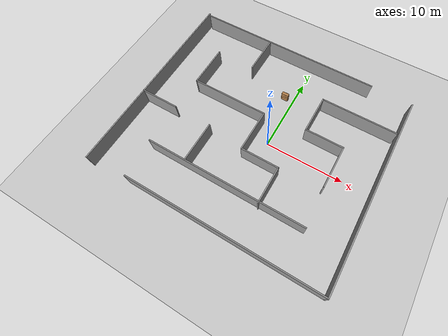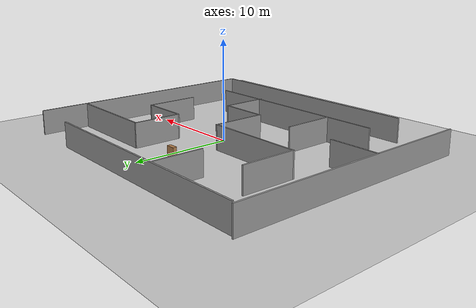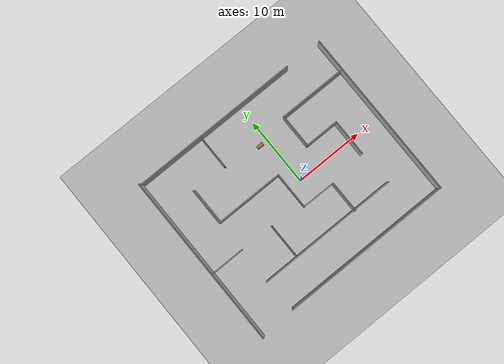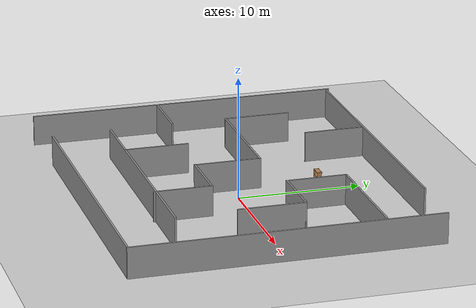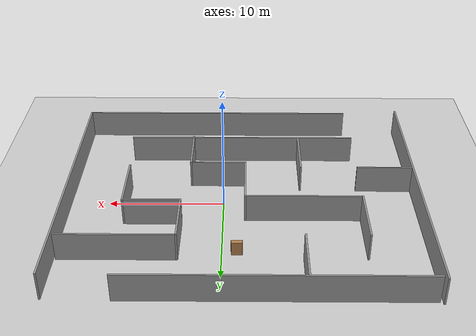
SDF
<sdf version="1.7">
 <world name="default">
  <light name="sun" type="directional">
   <pose>0 0 10 0 -0 0</pose>
   <diffuse>0.8 0.8 0.8 1</diffuse>
   <specular>0.2 0.2 0.2 1</specular>
   <attenuation>
    <range>1000</range>
    <constant>0.9</constant>
    <linear>0.01</linear>
    <quadratic>0.001</quadratic>
   </attenuation>
   <direction>-0.5 0.1 -0.9</direction>
   <spot><inner_angle>0</inner_angle><outer_angle>0</outer_angle><falloff>0</falloff></spot>
  </light>
  <model name="ground_plane">
   <static>1</static>
   <link name="link">
    <collision name="collision">
     <geometry><plane><normal>0 0 1</normal><size>100 100</size></plane></geometry>
     <surface><friction><ode><mu>100</mu><mu2>50</mu2></ode></friction></surface>
    </collision>
    <visual name="visual">
     <cast_shadows>0</cast_shadows>
     <geometry><plane><normal>0 0 1</normal><size>100 100</size></plane></geometry>
     <material>
      <script><uri>file://media/materials/scripts/gazebo.material</uri><name>Gazebo/Grey</name></script>
     </material>
    </visual>
   </link>
  </model>
  <gravity>0 0 -9.8</gravity>
  <magnetic_field>6e-06 2.3e-05 -4.2e-05</magnetic_field>
  <atmosphere type="adiabatic"/>
  <physics type="ode">
   <max_step_size>0.001</max_step_size>
   <real_time_factor>1</real_time_factor>
   <real_time_update_rate>1000</real_time_update_rate>
  </physics>
  <scene><ambient>0.4 0.4 0.4 1</ambient><background>0.7 0.7 0.7 1</background><shadows>1</shadows></scene>
  <audio><device>default</device></audio>
  <spherical_coordinates>
   <surface_model>EARTH_WGS84</surface_model>
   <latitude_deg>0</latitude_deg>
   <longitude_deg>0</longitude_deg>
   <elevation>0</elevation>
   <heading_deg>0</heading_deg>
  </spherical_coordinates>
  <model name="maze">
   <pose>-1.62336 0.048092 0 0 -0 0</pose>
   <link name="Wall_0">
    <collision name="Wall_0_Collision">
     <geometry><box><size>25.75 0.15 2.5</size></box></geometry>
     <pose>0 0 1.25 0 -0 0</pose>
    </collision>
    <visual name="Wall_0_Visual">
     <pose>0 0 1.25 0 -0 0</pose>
     <geometry><box><size>25.75 0.15 2.5</size></box></geometry>
     <material>
      <script><uri>file://media/materials/scripts/gazebo.material</uri><name>Gazebo/Grey</name></script>
      <ambient>1 1 1 1</ambient>
     </material>
     <meta><layer>0</layer></meta>
    </visual>
    <pose>-15.043 -0 0 0 -0 -1.5708</pose>
   </link>
   <link name="Wall_10">
    <collision name="Wall_10_Collision">
     <geometry><box><size>10 0.15 2.5</size></box></geometry>
     <pose>0 0 1.25 0 -0 0</pose>
    </collision>
    <visual name="Wall_10_Visual">
     <pose>0 0 1.25 0 -0 0</pose>
     <geometry><box><size>10 0.15 2.5</size></box></geometry>
     <material>
      <script><uri>file://media/materials/scripts/gazebo.material</uri><name>Gazebo/Grey</name></script>
      <ambient>1 1 1 1</ambient>
     </material>
     <meta><layer>0</layer></meta>
    </visual>
    <pose>-5.16502 2.28473 0 0 -0 0</pose>
   </link>
   <link name="Wall_11">
    <collision name="Wall_11_Collision">
     <geometry><box><size>5.5 0.15 2.5</size></box></geometry>
     <pose>0 0 1.25 0 -0 0</pose>
    </collision>
    <visual name="Wall_11_Visual">
     <pose>0 0 1.25 0 -0 0</pose>
     <geometry><box><size>5.5 0.15 2.5</size></box></geometry>
     <material>
      <script><uri>file://media/materials/scripts/gazebo.material</uri><name>Gazebo/Grey</name></script>
      <ambient>1 1 1 1</ambient>
     </material>
     <meta><layer>0</layer></meta>
    </visual>
    <pose>-0.240017 -0.390266 0 0 -0 -1.5708</pose>
   </link>
   <link name="Wall_12">
    <collision name="Wall_12_Collision">
     <geometry><box><size>5 0.15 2.5</size></box></geometry>
     <pose>0 0 1.25 0 -0 0</pose>
    </collision>
    <visual name="Wall_12_Visual">
     <pose>0 0 1.25 0 -0 0</pose>
     <geometry><box><size>5 0.15 2.5</size></box></geometry>
     <material>
      <script><uri>file://media/materials/scripts/gazebo.material</uri><name>Gazebo/Grey</name></script>
      <ambient>1 1 1 1</ambient>
     </material>
     <meta><layer>0</layer></meta>
    </visual>
    <pose>2.18498 -3.06527 0 0 -0 0</pose>
   </link>
   <link name="Wall_13">
    <collision name="Wall_13_Collision">
     <geometry><box><size>4.75 0.15 2.5</size></box></geometry>
     <pose>0 0 1.25 0 -0 0</pose>
    </collision>
    <visual name="Wall_13_Visual">
     <pose>0 0 1.25 0 -0 0</pose>
     <geometry><box><size>4.75 0.15 2.5</size></box></geometry>
     <material>
      <script><uri>file://media/materials/scripts/gazebo.material</uri><name>Gazebo/Grey</name></script>
      <ambient>1 1 1 1</ambient>
     </material>
     <meta><layer>0</layer></meta>
    </visual>
    <pose>4.60998 -5.36526 0 0 -0 -1.5708</pose>
   </link>
   <link name="Wall_15">
    <collision name="Wall_15_Collision">
     <geometry><box><size>20.5 0.15 2.5</size></box></geometry>
     <pose>0 0 1.25 0 -0 0</pose>
    </collision>
    <visual name="Wall_15_Visual">
     <pose>0 0 1.25 0 -0 0</pose>
     <geometry><box><size>20.5 0.15 2.5</size></box></geometry>
     <material>
      <script><uri>file://media/materials/scripts/gazebo.material</uri><name>Gazebo/Grey</name></script>
      <ambient>1 1 1 1</ambient>
     </material>
     <meta><layer>0</layer></meta>
    </visual>
    <pose>0.084983 -7.50728 0 0 -0 0</pose>
   </link>
   <link name="Wall_17">
    <collision name="Wall_17_Collision">
     <geometry><box><size>5.25 0.15 2.5</size></box></geometry>
     <pose>0 0 1.25 0 -0 0</pose>
    </collision>
    <visual name="Wall_17_Visual">
     <pose>0 0 1.25 0 -0 0</pose>
     <geometry><box><size>5.25 0.15 2.5</size></box></geometry>
     <material>
      <script><uri>file://media/materials/scripts/gazebo.material</uri><name>Gazebo/Grey</name></script>
      <ambient>1 1 1 1</ambient>
     </material>
     <meta><layer>0</layer></meta>
    </visual>
    <pose>-5.13702 -4.89201 0 0 -0 -1.5708</pose>
   </link>
   <link name="Wall_19">
    <collision name="Wall_19_Collision">
     <geometry><box><size>5 0.15 2.5</size></box></geometry>
     <pose>0 0 1.25 0 -0 0</pose>
    </collision>
    <visual name="Wall_19_Visual">
     <pose>0 0 1.25 0 -0 0</pose>
     <geometry><box><size>5 0.15 2.5</size></box></geometry>
     <material>
      <script><uri>file://media/materials/scripts/gazebo.material</uri><name>Gazebo/Grey</name></script>
      <ambient>1 1 1 1</ambient>
     </material>
     <meta><layer>0</layer></meta>
    </visual>
    <pose>-12.5858 -2.27125 0 0 -0 3.14159</pose>
   </link>
   <link name="Wall_2">
    <collision name="Wall_2_Collision">
     <geometry><box><size>25 0.15 2.5</size></box></geometry>
     <pose>0 0 1.25 0 -0 0</pose>
    </collision>
    <visual name="Wall_2_Visual">
     <pose>0 0 1.25 0 -0 0</pose>
     <geometry><box><size>25 0.15 2.5</size></box></geometry>
     <material>
      <script><uri>file://media/materials/scripts/gazebo.material</uri><name>Gazebo/Grey</name></script>
      <ambient>1 1 1 1</ambient>
     </material>
     <meta><layer>0</layer></meta>
    </visual>
    <pose>2.61801 -12.3895 0 0 -0 0</pose>
   </link>
   <link name="Wall_21">
    <collision name="Wall_21_Collision">
     <geometry><box><size>5.5 0.15 2.5</size></box></geometry>
     <pose>0 0 1.25 0 -0 0</pose>
    </collision>
    <visual name="Wall_21_Visual">
     <pose>0 0 1.25 0 -0 0</pose>
     <geometry><box><size>5.5 0.15 2.5</size></box></geometry>
     <material>
      <script><uri>file://media/materials/scripts/gazebo.material</uri><name>Gazebo/Grey</name></script>
      <ambient>1 1 1 1</ambient>
     </material>
     <meta><layer>0</layer></meta>
    </visual>
    <pose>10.005 0.191475 0 0 -0 1.5708</pose>
   </link>
   <link name="Wall_22">
    <collision name="Wall_22_Collision">
     <geometry><box><size>5 0.15 2.5</size></box></geometry>
     <pose>0 0 1.25 0 -0 0</pose>
    </collision>
    <visual name="Wall_22_Visual">
     <pose>0 0 1.25 0 -0 0</pose>
     <geometry><box><size>5 0.15 2.5</size></box></geometry>
     <material>
      <script><uri>file://media/materials/scripts/gazebo.material</uri><name>Gazebo/Grey</name></script>
      <ambient>1 1 1 1</ambient>
     </material>
     <meta><layer>0</layer></meta>
    </visual>
    <pose>7.57999 2.86647 0 0 -0 3.14159</pose>
   </link>
   <link name="Wall_23">
    <collision name="Wall_23_Collision">
     <geometry><box><size>5 0.15 2.5</size></box></geometry>
     <pose>0 0 1.25 0 -0 0</pose>
    </collision>
    <visual name="Wall_23_Visual">
     <pose>0 0 1.25 0 -0 0</pose>
     <geometry><box><size>5 0.15 2.5</size></box></geometry>
     <material>
      <script><uri>file://media/materials/scripts/gazebo.material</uri><name>Gazebo/Grey</name></script>
      <ambient>1 1 1 1</ambient>
     </material>
     <meta><layer>0</layer></meta>
    </visual>
    <pose>5.15499 5.29148 0 0 -0 1.5708</pose>
   </link>
   <link name="Wall_24">
    <collision name="Wall_24_Collision">
     <geometry><box><size>9.75 0.15 2.5</size></box></geometry>
     <pose>0 0 1.25 0 -0 0</pose>
    </collision>
    <visual name="Wall_24_Visual">
     <pose>0 0 1.25 0 -0 0</pose>
     <geometry><box><size>9.75 0.15 2.5</size></box></geometry>
     <material>
      <script><uri>file://media/materials/scripts/gazebo.material</uri><name>Gazebo/Grey</name></script>
      <ambient>1 1 1 1</ambient>
     </material>
     <meta><layer>0</layer></meta>
    </visual>
    <pose>9.95499 7.71647 0 0 -0 0</pose>
   </link>
   <link name="Wall_3">
    <collision name="Wall_3_Collision">
     <geometry><box><size>25 0.15 2.5</size></box></geometry>
     <pose>0 0 1.25 0 -0 0</pose>
    </collision>
    <visual name="Wall_3_Visual">
     <pose>0 0 1.25 0 -0 0</pose>
     <geometry><box><size>25 0.15 2.5</size></box></geometry>
     <material>
      <script><uri>file://media/materials/scripts/gazebo.material</uri><name>Gazebo/Grey</name></script>
      <ambient>1 1 1 1</ambient>
     </material>
     <meta><layer>0</layer></meta>
    </visual>
    <pose>15.043 0.035487 0 0 -0 1.5708</pose>
   </link>
   <link name="Wall_5">
    <collision name="Wall_5_Collision">
     <geometry><box><size>24.5 0.15 2.5</size></box></geometry>
     <pose>0 0 1.25 0 -0 0</pose>
    </collision>
    <visual name="Wall_5_Visual">
     <pose>0 0 1.25 0 -0 0</pose>
     <geometry><box><size>24.5 0.15 2.5</size></box></geometry>
     <material>
      <script><uri>file://media/materials/scripts/gazebo.material</uri><name>Gazebo/Grey</name></script>
      <ambient>1 1 1 1</ambient>
     </material>
     <meta><layer>0</layer></meta>
    </visual>
    <pose>-2.51423 12.5877 0 0 -0 0</pose>
   </link>
   <link name="Wall_7">
    <collision name="Wall_7_Collision">
     <geometry><box><size>5 0.15 2.5</size></box></geometry>
     <pose>0 0 1.25 0 -0 0</pose>
    </collision>
    <visual name="Wall_7_Visual">
     <pose>0 0 1.25 0 -0 0</pose>
     <geometry><box><size>5 0.15 2.5</size></box></geometry>
     <material>
      <script><uri>file://media/materials/scripts/gazebo.material</uri><name>Gazebo/Grey</name></script>
      <ambient>1 1 1 1</ambient>
     </material>
     <meta><layer>0</layer></meta>
    </visual>
    <pose>-4.99551 10.0597 0 0 -0 1.5708</pose>
   </link>
   <link name="Wall_9">
    <collision name="Wall_9_Collision">
     <geometry><box><size>5.5 0.15 2.5</size></box></geometry>
     <pose>0 0 1.25 0 -0 0</pose>
    </collision>
    <visual name="Wall_9_Visual">
     <pose>0 0 1.25 0 -0 0</pose>
     <geometry><box><size>5.5 0.15 2.5</size></box></geometry>
     <material>
      <script><uri>file://media/materials/scripts/gazebo.material</uri><name>Gazebo/Grey</name></script>
      <ambient>1 1 1 1</ambient>
     </material>
     <meta><layer>0</layer></meta>
    </visual>
    <pose>-10.09 4.95973 0 0 -0 -1.5708</pose>
   </link>
   <static>1</static>
  </model>
  <model name="bookshelf">
   <static>1</static>
   <link name="link">
    <inertial><mass>1</mass></inertial>
    <collision name="back">
     <pose>0 0.005 0.6 0 -0 0</pose>
     <geometry><box><size>0.9 0.01 1.2</size></box></geometry>
    </collision>
    <visual name="visual1">
     <pose>0 0.005 0.6 0 -0 0</pose>
     <geometry><box><size>0.9 0.01 1.2</size></box></geometry>
     <material>
      <script><uri>file://media/materials/scripts/gazebo.material</uri><name>Gazebo/Wood</name></script>
     </material>
    </visual>
    <collision name="left_side">
     <pose>0.45 -0.195 0.6 0 -0 0</pose>
     <geometry><box><size>0.02 0.4 1.2</size></box></geometry>
    </collision>
    <visual name="visual2">
     <pose>0.45 -0.195 0.6 0 -0 0</pose>
     <geometry><box><size>0.02 0.4 1.2</size></box></geometry>
     <material>
      <script><uri>file://media/materials/scripts/gazebo.material</uri><name>Gazebo/Wood</name></script>
     </material>
    </visual>
    <collision name="right_side">
     <pose>-0.45 -0.195 0.6 0 -0 0</pose>
     <geometry><box><size>0.02 0.4 1.2</size></box></geometry>
    </collision>
    <visual name="visual3">
     <pose>-0.45 -0.195 0.6 0 -0 0</pose>
     <geometry><box><size>0.02 0.4 1.2</size></box></geometry>
     <material>
      <script><uri>file://media/materials/scripts/gazebo.material</uri><name>Gazebo/Wood</name></script>
     </material>
    </visual>
    <collision name="bottom">
     <pose>0 -0.195 0.03 0 -0 0</pose>
     <geometry><box><size>0.88 0.4 0.06</size></box></geometry>
    </collision>
    <visual name="visual4">
     <pose>0 -0.195 0.03 0 -0 0</pose>
     <geometry><box><size>0.88 0.4 0.06</size></box></geometry>
     <material>
      <script><uri>file://media/materials/scripts/gazebo.material</uri><name>Gazebo/Wood</name></script>
     </material>
    </visual>
    <collision name="top">
     <pose>0 -0.195 1.19 0 -0 0</pose>
     <geometry><box><size>0.88 0.4 0.02</size></box></geometry>
    </collision>
    <visual name="visual5">
     <pose>0 -0.195 1.19 0 -0 0</pose>
     <geometry><box><size>0.88 0.4 0.02</size></box></geometry>
     <material>
      <script><uri>file://media/materials/scripts/gazebo.material</uri><name>Gazebo/Wood</name></script>
     </material>
    </visual>
    <collision name="low_shelf">
     <pose>0 -0.195 0.43 0 -0 0</pose>
     <geometry><box><size>0.88 0.4 0.02</size></box></geometry>
    </collision>
    <visual name="visual6">
     <pose>0 -0.195 0.43 0 -0 0</pose>
     <geometry><box><size>0.88 0.4 0.02</size></box></geometry>
     <material>
      <script><uri>file://media/materials/scripts/gazebo.material</uri><name>Gazebo/Wood</name></script>
     </material>
    </visual>
    <collision name="high_shelf">
     <pose>0 -0.195 0.8 0 -0 0</pose>
     <geometry><box><size>0.88 0.4 0.02</size></box></geometry>
    </collision>
    <visual name="visual7">
     <pose>0 -0.195 0.8 0 -0 0</pose>
     <geometry><box><size>0.88 0.4 0.02</size></box></geometry>
     <material>
      <script><uri>file://media/materials/scripts/gazebo.material</uri><name>Gazebo/Wood</name></script>
     </material>
    </visual>
   </link>
   <pose>-1.21045 7.16175 0 0 -0 0</pose>
  </model>
 </world>
</sdf>
